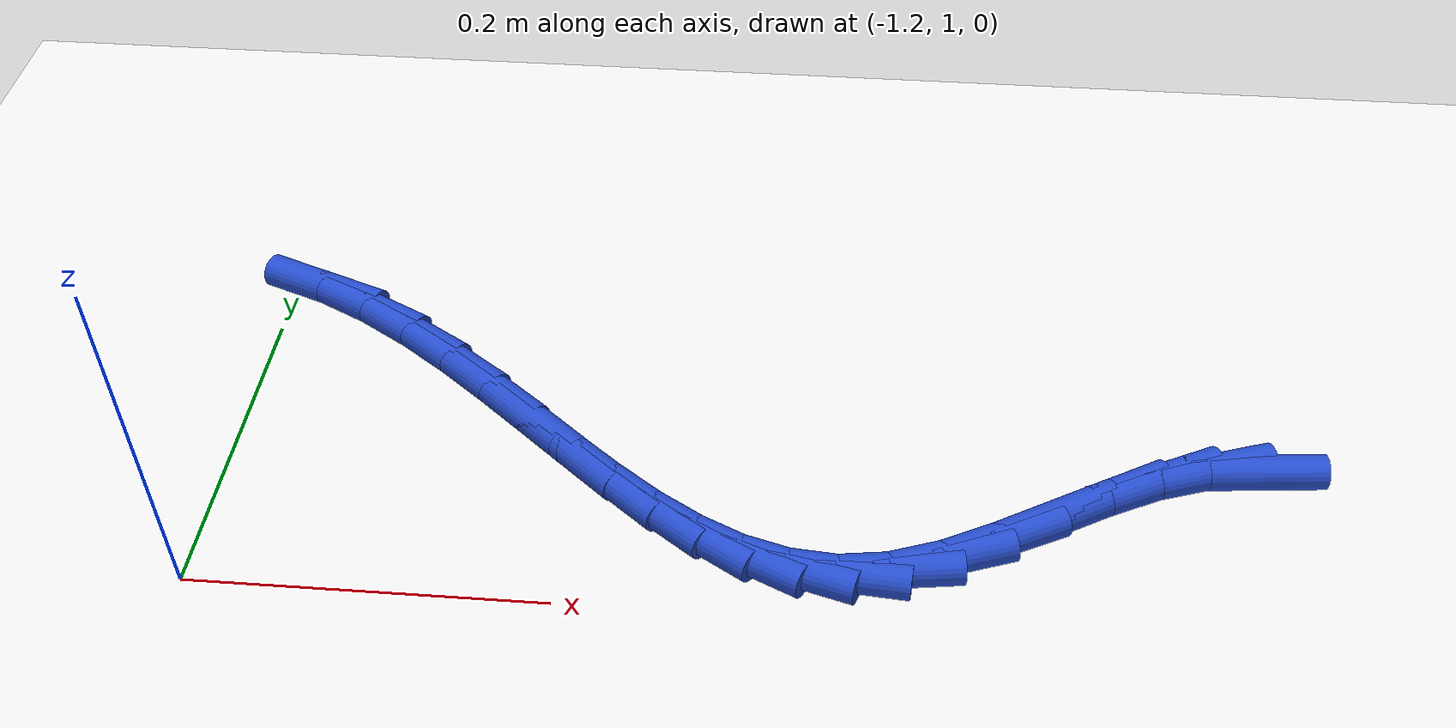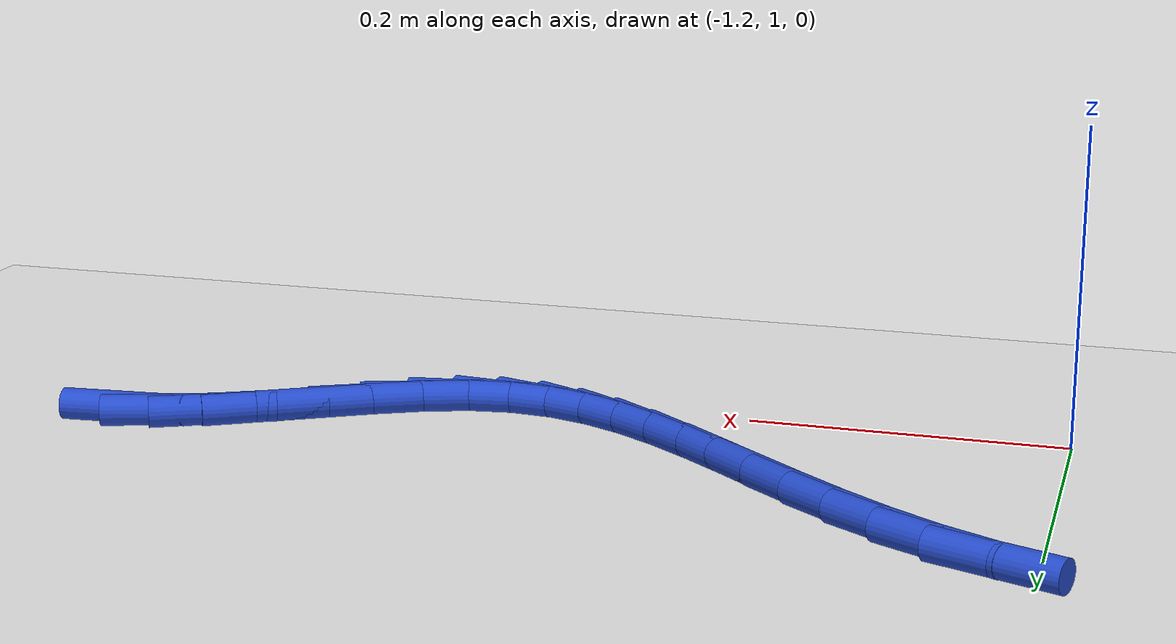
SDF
<sdf version="1.6">
 <world name="default">
  <model name="ground_plane">
   <static>1</static>
   <link name="link">
    <collision name="collision">
     <geometry><plane><normal>0 0 1</normal><size>100 100</size></plane></geometry>
     <surface><friction><ode><mu>100</mu><mu2>50</mu2></ode></friction></surface>
    </collision>
    <visual name="visual">
     <cast_shadows>0</cast_shadows>
     <geometry><plane><normal>0 0 1</normal><size>100 100</size></plane></geometry>
     <material>
      <script><uri>file://media/materials/scripts/gazebo.material</uri><name>Gazebo/WhiteGlow</name></script>
     </material>
    </visual>
   </link>
  </model>
  <model name="line">
   <link name="link_41">
    <pose>-0.6209128162907744 1.115623133013941 0.01 0 1.57 0.09308619022920465</pose>
    <collision name="collision">
     <geometry><cylinder><radius>0.01</radius><length>0.08</length></cylinder></geometry>
    </collision>
    <visual name="visual">
     <material>
      <script><name>Gazebo/Blue</name><uri>file://media/materials/scripts/gazebo.material</uri></script>
     </material>
     <geometry><cylinder><radius>0.01</radius><length>0.08</length></cylinder></geometry>
    </visual>
   </link>
   <link name="link_42">
    <pose>-0.6480802191490858 1.1130868932094247 0.01 0 1.57 0.33399810236683</pose>
    <collision name="collision">
     <geometry><cylinder><radius>0.01</radius><length>0.08</length></cylinder></geometry>
    </collision>
    <visual name="visual">
     <material>
      <script><name>Gazebo/Blue</name><uri>file://media/materials/scripts/gazebo.material</uri></script>
     </material>
     <geometry><cylinder><radius>0.01</radius><length>0.08</length></cylinder></geometry>
    </visual>
   </link>
   <link name="link_43">
    <pose>-0.6763732659363002 1.1032692571783274 0.01 0 1.57 0.4690690829159068</pose>
    <collision name="collision">
     <geometry><cylinder><radius>0.01</radius><length>0.08</length></cylinder></geometry>
    </collision>
    <visual name="visual">
     <material>
      <script><name>Gazebo/Blue</name><uri>file://media/materials/scripts/gazebo.material</uri></script>
     </material>
     <geometry><cylinder><radius>0.01</radius><length>0.08</length></cylinder></geometry>
    </visual>
   </link>
   <link name="link_44">
    <pose>-0.7054333575391408 1.0885417384843585 0.01 0 1.57 0.5294199195136121</pose>
    <collision name="collision">
     <geometry><cylinder><radius>0.01</radius><length>0.08</length></cylinder></geometry>
    </collision>
    <visual name="visual">
     <material>
      <script><name>Gazebo/Blue</name><uri>file://media/materials/scripts/gazebo.material</uri></script>
     </material>
     <geometry><cylinder><radius>0.01</radius><length>0.08</length></cylinder></geometry>
    </visual>
   </link>
   <link name="link_45">
    <pose>-0.7348998324313784 1.0712997826525015 0.01 0 1.57 0.5317450055895862</pose>
    <collision name="collision">
     <geometry><cylinder><radius>0.01</radius><length>0.08</length></cylinder></geometry>
    </collision>
    <visual name="visual">
     <material>
      <script><name>Gazebo/Blue</name><uri>file://media/materials/scripts/gazebo.material</uri></script>
     </material>
     <geometry><cylinder><radius>0.01</radius><length>0.08</length></cylinder></geometry>
    </visual>
   </link>
   <link name="link_46">
    <pose>-0.7644120290867827 1.0539388352077395 0.01 0 1.57 0.47687143395210596</pose>
    <collision name="collision">
     <geometry><cylinder><radius>0.01</radius><length>0.08</length></cylinder></geometry>
    </collision>
    <visual name="visual">
     <material>
      <script><name>Gazebo/Blue</name><uri>file://media/materials/scripts/gazebo.material</uri></script>
     </material>
     <geometry><cylinder><radius>0.01</radius><length>0.08</length></cylinder></geometry>
    </visual>
   </link>
   <link name="link_47">
    <pose>-0.7936092859791244 1.038854341675056 0.01 0 1.57 0.3500426043366987</pose>
    <collision name="collision">
     <geometry><cylinder><radius>0.01</radius><length>0.08</length></cylinder></geometry>
    </collision>
    <visual name="visual">
     <material>
      <script><name>Gazebo/Blue</name><uri>file://media/materials/scripts/gazebo.material</uri></script>
     </material>
     <geometry><cylinder><radius>0.01</radius><length>0.08</length></cylinder></geometry>
    </visual>
   </link>
   <link name="link_48">
    <pose>-0.8221309415821738 1.0284417475794352 0.01 0 1.57 0.13979342879848258</pose>
    <collision name="collision">
     <geometry><cylinder><radius>0.01</radius><length>0.08</length></cylinder></geometry>
    </collision>
    <visual name="visual">
     <material>
      <script><name>Gazebo/Blue</name><uri>file://media/materials/scripts/gazebo.material</uri></script>
     </material>
     <geometry><cylinder><radius>0.01</radius><length>0.08</length></cylinder></geometry>
    </visual>
   </link>
   <link name="link_49">
    <pose>-0.8497121146427964 1.0245607668585095 0.01 0 1.57 -0.08808241440504086</pose>
    <collision name="collision">
     <geometry><cylinder><radius>0.01</radius><length>0.08</length></cylinder></geometry>
    </collision>
    <visual name="visual">
     <material>
      <script><name>Gazebo/Blue</name><uri>file://media/materials/scripts/gazebo.material</uri></script>
     </material>
     <geometry><cylinder><radius>0.01</radius><length>0.08</length></cylinder></geometry>
    </visual>
   </link>
   <link name="link_50">
    <pose>-0.8764718043731252 1.0269239396701266 0.01 0 1.57 -0.2892102116565944</pose>
    <collision name="collision">
     <geometry><cylinder><radius>0.01</radius><length>0.08</length></cylinder></geometry>
    </collision>
    <visual name="visual">
     <material>
      <script><name>Gazebo/Blue</name><uri>file://media/materials/scripts/gazebo.material</uri></script>
     </material>
     <geometry><cylinder><radius>0.01</radius><length>0.08</length></cylinder></geometry>
    </visual>
   </link>
   <link name="link_51">
    <pose>-0.9026251703209627 1.0347059487657628 0.01 0 1.57 -0.44782504012098623</pose>
    <collision name="collision">
     <geometry><cylinder><radius>0.01</radius><length>0.08</length></cylinder></geometry>
    </collision>
    <visual name="visual">
     <material>
      <script><name>Gazebo/Blue</name><uri>file://media/materials/scripts/gazebo.material</uri></script>
     </material>
     <geometry><cylinder><radius>0.01</radius><length>0.08</length></cylinder></geometry>
    </visual>
   </link>
   <link name="link_52">
    <pose>-0.9283873720341391 1.047081476896741 0.01 0 1.57 -0.5628698537850142</pose>
    <collision name="collision">
     <geometry><cylinder><radius>0.01</radius><length>0.08</length></cylinder></geometry>
    </collision>
    <visual name="visual">
     <material>
      <script><name>Gazebo/Blue</name><uri>file://media/materials/scripts/gazebo.material</uri></script>
     </material>
     <geometry><cylinder><radius>0.01</radius><length>0.08</length></cylinder></geometry>
    </visual>
   </link>
   <link name="link_53">
    <pose>-0.9539735690604847 1.0632252068143828 0.01 0 1.57 -0.6401861879559722</pose>
    <collision name="collision">
     <geometry><cylinder><radius>0.01</radius><length>0.08</length></cylinder></geometry>
    </collision>
    <visual name="visual">
     <material>
      <script><name>Gazebo/Blue</name><uri>file://media/materials/scripts/gazebo.material</uri></script>
     </material>
     <geometry><cylinder><radius>0.01</radius><length>0.08</length></cylinder></geometry>
    </visual>
   </link>
   <link name="link_54">
    <pose>-0.9795989209478297 1.082311821270011 0.01 0 1.57 -0.6864213990536095</pose>
    <collision name="collision">
     <geometry><cylinder><radius>0.01</radius><length>0.08</length></cylinder></geometry>
    </collision>
    <visual name="visual">
     <material>
      <script><name>Gazebo/Blue</name><uri>file://media/materials/scripts/gazebo.material</uri></script>
     </material>
     <geometry><cylinder><radius>0.01</radius><length>0.08</length></cylinder></geometry>
    </visual>
   </link>
   <link name="link_55">
    <pose>-1.0054785872440042 1.1035160030149485 0.01 0 1.57 -0.7066858386909407</pose>
    <collision name="collision">
     <geometry><cylinder><radius>0.01</radius><length>0.08</length></cylinder></geometry>
    </collision>
    <visual name="visual">
     <material>
      <script><name>Gazebo/Blue</name><uri>file://media/materials/scripts/gazebo.material</uri></script>
     </material>
     <geometry><cylinder><radius>0.01</radius><length>0.08</length></cylinder></geometry>
    </visual>
   </link>
   <link name="link_56">
    <pose>-1.0318277274968386 1.1260124348005174 0.01 0 1.57 -0.7041644778268977</pose>
    <collision name="collision">
     <geometry><cylinder><radius>0.01</radius><length>0.08</length></cylinder></geometry>
    </collision>
    <visual name="visual">
     <material>
      <script><name>Gazebo/Blue</name><uri>file://media/materials/scripts/gazebo.material</uri></script>
     </material>
     <geometry><cylinder><radius>0.01</radius><length>0.08</length></cylinder></geometry>
    </visual>
   </link>
   <link name="link_57">
    <pose>-1.0588615012541631 1.1489757993780398 0.01 0 1.57 -0.6803501926245025</pose>
    <collision name="collision">
     <geometry><cylinder><radius>0.01</radius><length>0.08</length></cylinder></geometry>
    </collision>
    <visual name="visual">
     <material>
      <script><name>Gazebo/Blue</name><uri>file://media/materials/scripts/gazebo.material</uri></script>
     </material>
     <geometry><cylinder><radius>0.01</radius><length>0.08</length></cylinder></geometry>
    </visual>
   </link>
   <link name="link_58">
    <pose>-1.0867950680638074 1.1715807794988387 0.01 0 1.57 -0.6354082927952933</pose>
    <collision name="collision">
     <geometry><cylinder><radius>0.01</radius><length>0.08</length></cylinder></geometry>
    </collision>
    <visual name="visual">
     <material>
      <script><name>Gazebo/Blue</name><uri>file://media/materials/scripts/gazebo.material</uri></script>
     </material>
     <geometry><cylinder><radius>0.01</radius><length>0.08</length></cylinder></geometry>
    </visual>
   </link>
   <link name="link_59">
    <pose>-1.1158435874736021 1.1930020579142362 0.01 0 1.57 -0.5686107847823842</pose>
    <collision name="collision">
     <geometry><cylinder><radius>0.01</radius><length>0.08</length></cylinder></geometry>
    </collision>
    <visual name="visual">
     <material>
      <script><name>Gazebo/Blue</name><uri>file://media/materials/scripts/gazebo.material</uri></script>
     </material>
     <geometry><cylinder><radius>0.01</radius><length>0.08</length></cylinder></geometry>
    </visual>
   </link>
   <link name="link_60">
    <pose>-1.1462222190313773 1.2124143173755546 0.01 0 1.57 -0.47896418652722533</pose>
    <collision name="collision">
     <geometry><cylinder><radius>0.01</radius><length>0.08</length></cylinder></geometry>
    </collision>
    <visual name="visual">
     <material>
      <script><name>Gazebo/Blue</name><uri>file://media/materials/scripts/gazebo.material</uri></script>
     </material>
     <geometry><cylinder><radius>0.01</radius><length>0.08</length></cylinder></geometry>
    </visual>
   </link>
   <link name="link_61">
    <pose>-1.1781461222849632 1.2289922406341167 0.01 0 1.57 -0.3662326528747795</pose>
    <collision name="collision">
     <geometry><cylinder><radius>0.01</radius><length>0.08</length></cylinder></geometry>
    </collision>
    <visual name="visual">
     <material>
      <script><name>Gazebo/Blue</name><uri>file://media/materials/scripts/gazebo.material</uri></script>
     </material>
     <geometry><cylinder><radius>0.01</radius><length>0.08</length></cylinder></geometry>
    </visual>
   </link>
  </model>
 </world>
</sdf>
